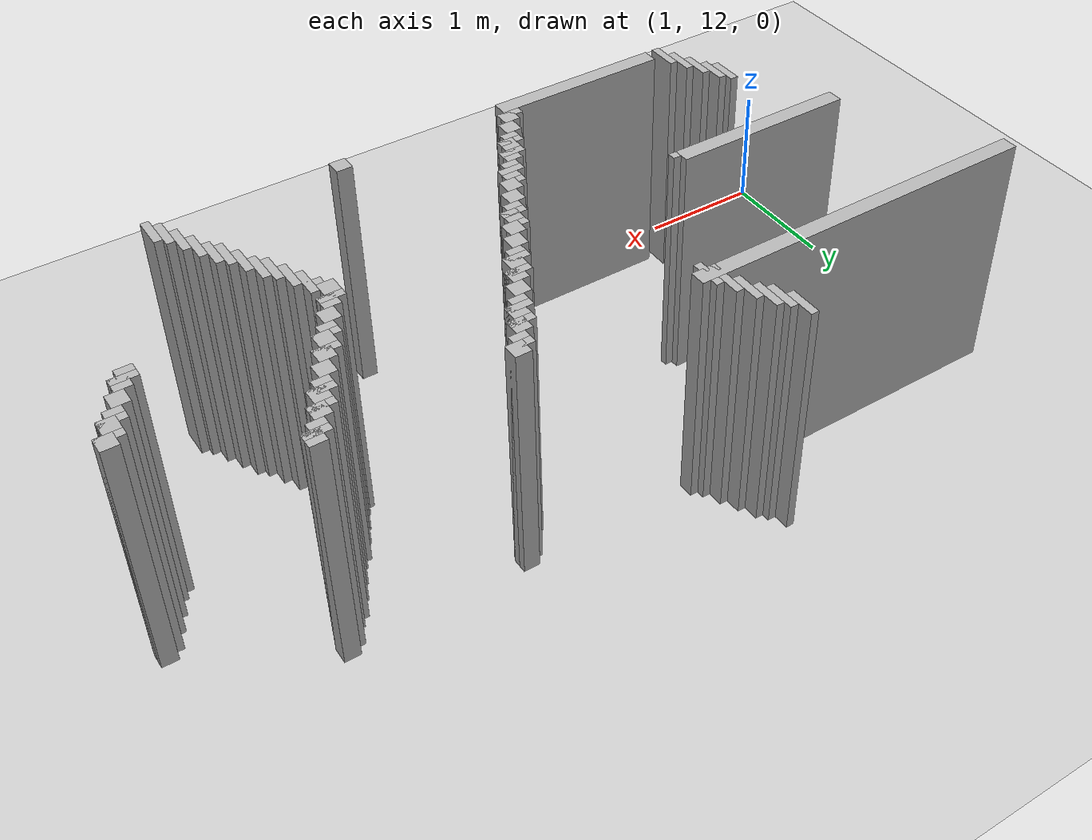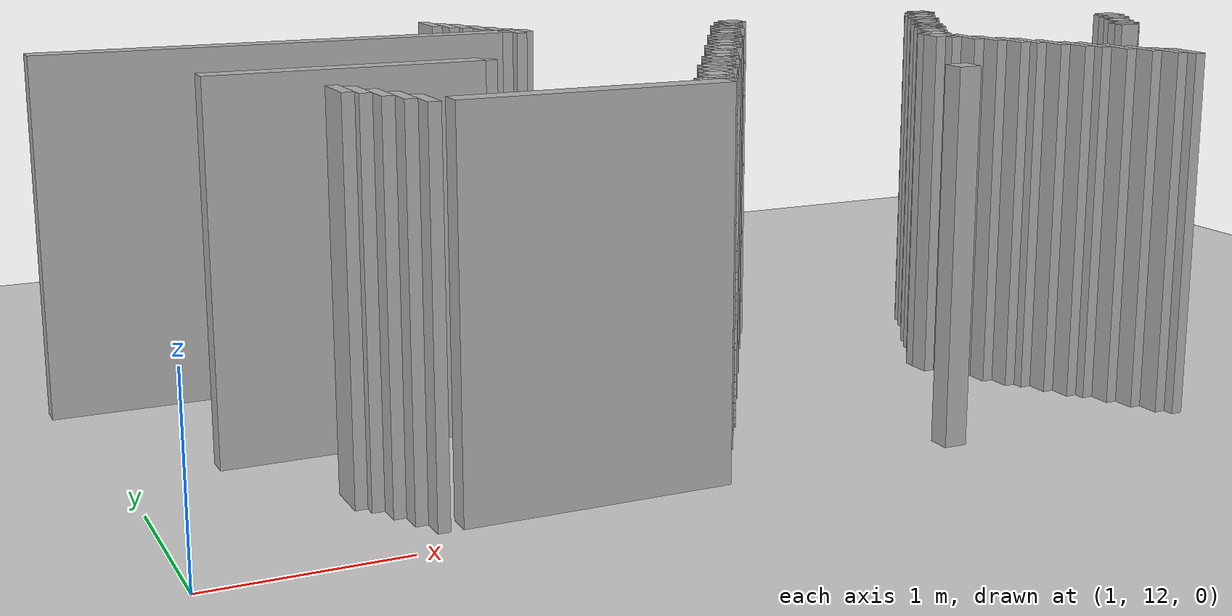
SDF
<sdf version="1.6">
 <world name="slam_world">
  <model name="ground_plane">
   <static>true</static>
   <link name="link">
    <collision name="collision">
     <geometry><plane><normal>0 0 1</normal><size>100 100</size></plane></geometry>
    </collision>
    <visual name="visual">
     <geometry><plane><normal>0 0 1</normal><size>100 100</size></plane></geometry>
     <material>
      <ambient>0.8 0.8 0.8 1</ambient>
      <diffuse>0.8 0.8 0.8 1</diffuse>
      <specular>0.8 0.8 0.8 1</specular>
     </material>
    </visual>
   </link>
  </model>
  <model name="wall_856">
   <static>true</static>
   <pose>3.2872340425531914 15.319148936170212 1.0 0 0 0</pose>
   <link name="link">
    <collision name="collision">
     <geometry><box><size>0.06382978723404255 0.2553191489361702 2.0</size></box></geometry>
    </collision>
    <visual name="visual">
     <geometry><box><size>0.06382978723404255 0.2553191489361702 2.0</size></box></geometry>
     <material><ambient>0.5 0.5 0.5 1</ambient><diffuse>0.7 0.7 0.7 1</diffuse></material>
    </visual>
   </link>
  </model>
  <model name="wall_862">
   <static>true</static>
   <pose>3.351063829787234 15.191489361702127 1.0 0 0 0</pose>
   <link name="link">
    <collision name="collision">
     <geometry><box><size>0.06382978723404255 0.2553191489361702 2.0</size></box></geometry>
    </collision>
    <visual name="visual">
     <geometry><box><size>0.06382978723404255 0.2553191489361702 2.0</size></box></geometry>
     <material><ambient>0.5 0.5 0.5 1</ambient><diffuse>0.7 0.7 0.7 1</diffuse></material>
    </visual>
   </link>
  </model>
  <model name="wall_868">
   <static>true</static>
   <pose>3.4148936170212765 15.127659574468083 1.0 0 0 0</pose>
   <link name="link">
    <collision name="collision">
     <geometry><box><size>0.06382978723404255 0.2553191489361702 2.0</size></box></geometry>
    </collision>
    <visual name="visual">
     <geometry><box><size>0.06382978723404255 0.2553191489361702 2.0</size></box></geometry>
     <material><ambient>0.5 0.5 0.5 1</ambient><diffuse>0.7 0.7 0.7 1</diffuse></material>
    </visual>
   </link>
  </model>
  <model name="wall_875">
   <static>true</static>
   <pose>3.478723404255319 14.999999999999998 1.0 0 0 0</pose>
   <link name="link">
    <collision name="collision">
     <geometry><box><size>0.06382978723404255 0.2553191489361702 2.0</size></box></geometry>
    </collision>
    <visual name="visual">
     <geometry><box><size>0.06382978723404255 0.2553191489361702 2.0</size></box></geometry>
     <material><ambient>0.5 0.5 0.5 1</ambient><diffuse>0.7 0.7 0.7 1</diffuse></material>
    </visual>
   </link>
  </model>
  <model name="wall_882">
   <static>true</static>
   <pose>3.5425531914893615 14.840425531914892 1.0 0 0 0</pose>
   <link name="link">
    <collision name="collision">
     <geometry><box><size>0.06382978723404255 0.3191489361702127 2.0</size></box></geometry>
    </collision>
    <visual name="visual">
     <geometry><box><size>0.06382978723404255 0.3191489361702127 2.0</size></box></geometry>
     <material><ambient>0.5 0.5 0.5 1</ambient><diffuse>0.7 0.7 0.7 1</diffuse></material>
    </visual>
   </link>
  </model>
  <model name="wall_888">
   <static>true</static>
   <pose>3.606382978723404 14.744680851063828 1.0 0 0 0</pose>
   <link name="link">
    <collision name="collision">
     <geometry><box><size>0.06382978723404255 0.2553191489361702 2.0</size></box></geometry>
    </collision>
    <visual name="visual">
     <geometry><box><size>0.06382978723404255 0.2553191489361702 2.0</size></box></geometry>
     <material><ambient>0.5 0.5 0.5 1</ambient><diffuse>0.7 0.7 0.7 1</diffuse></material>
    </visual>
   </link>
  </model>
  <model name="wall_893">
   <static>true</static>
   <pose>2.2659574468085104 14.744680851063828 1.0 0 0 0</pose>
   <link name="link">
    <collision name="collision">
     <geometry><box><size>2.8723404255319145 0.1276595744680851 2.0</size></box></geometry>
    </collision>
    <visual name="visual">
     <geometry><box><size>2.8723404255319145 0.1276595744680851 2.0</size></box></geometry>
     <material><ambient>0.5 0.5 0.5 1</ambient><diffuse>0.7 0.7 0.7 1</diffuse></material>
    </visual>
   </link>
  </model>
  <model name="wall_898">
   <static>true</static>
   <pose>5.042553191489361 14.680851063829786 1.0 0 0 0</pose>
   <link name="link">
    <collision name="collision">
     <geometry><box><size>0.1276595744680851 0.1276595744680851 2.0</size></box></geometry>
    </collision>
    <visual name="visual">
     <geometry><box><size>0.1276595744680851 0.1276595744680851 2.0</size></box></geometry>
     <material><ambient>0.5 0.5 0.5 1</ambient><diffuse>0.7 0.7 0.7 1</diffuse></material>
    </visual>
   </link>
  </model>
  <model name="wall_899">
   <static>true</static>
   <pose>6.446808510638298 14.680851063829786 1.0 0 0 0</pose>
   <link name="link">
    <collision name="collision">
     <geometry><box><size>0.1276595744680851 0.1276595744680851 2.0</size></box></geometry>
    </collision>
    <visual name="visual">
     <geometry><box><size>0.1276595744680851 0.1276595744680851 2.0</size></box></geometry>
     <material><ambient>0.5 0.5 0.5 1</ambient><diffuse>0.7 0.7 0.7 1</diffuse></material>
    </visual>
   </link>
  </model>
  <model name="wall_904">
   <static>true</static>
   <pose>5.01063829787234 14.648936170212766 1.0 0 0 0</pose>
   <link name="link">
    <collision name="collision">
     <geometry><box><size>0.19148936170212766 0.06382978723404255 2.0</size></box></geometry>
    </collision>
    <visual name="visual">
     <geometry><box><size>0.19148936170212766 0.06382978723404255 2.0</size></box></geometry>
     <material><ambient>0.5 0.5 0.5 1</ambient><diffuse>0.7 0.7 0.7 1</diffuse></material>
    </visual>
   </link>
  </model>
  <model name="wall_905">
   <static>true</static>
   <pose>6.414893617021276 14.648936170212766 1.0 0 0 0</pose>
   <link name="link">
    <collision name="collision">
     <geometry><box><size>0.19148936170212766 0.06382978723404255 2.0</size></box></geometry>
    </collision>
    <visual name="visual">
     <geometry><box><size>0.19148936170212766 0.06382978723404255 2.0</size></box></geometry>
     <material><ambient>0.5 0.5 0.5 1</ambient><diffuse>0.7 0.7 0.7 1</diffuse></material>
    </visual>
   </link>
  </model>
  <model name="wall_911">
   <static>true</static>
   <pose>4.978723404255319 14.585106382978722 1.0 0 0 0</pose>
   <link name="link">
    <collision name="collision">
     <geometry><box><size>0.1276595744680851 0.06382978723404255 2.0</size></box></geometry>
    </collision>
    <visual name="visual">
     <geometry><box><size>0.1276595744680851 0.06382978723404255 2.0</size></box></geometry>
     <material><ambient>0.5 0.5 0.5 1</ambient><diffuse>0.7 0.7 0.7 1</diffuse></material>
    </visual>
   </link>
  </model>
  <model name="wall_912">
   <static>true</static>
   <pose>6.382978723404255 14.585106382978722 1.0 0 0 0</pose>
   <link name="link">
    <collision name="collision">
     <geometry><box><size>0.1276595744680851 0.06382978723404255 2.0</size></box></geometry>
    </collision>
    <visual name="visual">
     <geometry><box><size>0.1276595744680851 0.06382978723404255 2.0</size></box></geometry>
     <material><ambient>0.5 0.5 0.5 1</ambient><diffuse>0.7 0.7 0.7 1</diffuse></material>
    </visual>
   </link>
  </model>
  <model name="wall_917">
   <static>true</static>
   <pose>4.914893617021276 14.489361702127658 1.0 0 0 0</pose>
   <link name="link">
    <collision name="collision">
     <geometry><box><size>0.1276595744680851 0.1276595744680851 2.0</size></box></geometry>
    </collision>
    <visual name="visual">
     <geometry><box><size>0.1276595744680851 0.1276595744680851 2.0</size></box></geometry>
     <material><ambient>0.5 0.5 0.5 1</ambient><diffuse>0.7 0.7 0.7 1</diffuse></material>
    </visual>
   </link>
  </model>
  <model name="wall_918">
   <static>true</static>
   <pose>6.319148936170213 14.489361702127658 1.0 0 0 0</pose>
   <link name="link">
    <collision name="collision">
     <geometry><box><size>0.1276595744680851 0.1276595744680851 2.0</size></box></geometry>
    </collision>
    <visual name="visual">
     <geometry><box><size>0.1276595744680851 0.1276595744680851 2.0</size></box></geometry>
     <material><ambient>0.5 0.5 0.5 1</ambient><diffuse>0.7 0.7 0.7 1</diffuse></material>
    </visual>
   </link>
  </model>
  <model name="wall_925">
   <static>true</static>
   <pose>4.882978723404255 14.457446808510637 1.0 0 0 0</pose>
   <link name="link">
    <collision name="collision">
     <geometry><box><size>0.19148936170212766 0.06382978723404255 2.0</size></box></geometry>
    </collision>
    <visual name="visual">
     <geometry><box><size>0.19148936170212766 0.06382978723404255 2.0</size></box></geometry>
     <material><ambient>0.5 0.5 0.5 1</ambient><diffuse>0.7 0.7 0.7 1</diffuse></material>
    </visual>
   </link>
  </model>
  <model name="wall_926">
   <static>true</static>
   <pose>6.287234042553191 14.457446808510637 1.0 0 0 0</pose>
   <link name="link">
    <collision name="collision">
     <geometry><box><size>0.19148936170212766 0.06382978723404255 2.0</size></box></geometry>
    </collision>
    <visual name="visual">
     <geometry><box><size>0.19148936170212766 0.06382978723404255 2.0</size></box></geometry>
     <material><ambient>0.5 0.5 0.5 1</ambient><diffuse>0.7 0.7 0.7 1</diffuse></material>
    </visual>
   </link>
  </model>
  <model name="wall_933">
   <static>true</static>
   <pose>4.8510638297872335 14.361702127659573 1.0 0 0 0</pose>
   <link name="link">
    <collision name="collision">
     <geometry><box><size>0.1276595744680851 0.1276595744680851 2.0</size></box></geometry>
    </collision>
    <visual name="visual">
     <geometry><box><size>0.1276595744680851 0.1276595744680851 2.0</size></box></geometry>
     <material><ambient>0.5 0.5 0.5 1</ambient><diffuse>0.7 0.7 0.7 1</diffuse></material>
    </visual>
   </link>
  </model>
  <model name="wall_934">
   <static>true</static>
   <pose>6.25531914893617 14.361702127659573 1.0 0 0 0</pose>
   <link name="link">
    <collision name="collision">
     <geometry><box><size>0.1276595744680851 0.1276595744680851 2.0</size></box></geometry>
    </collision>
    <visual name="visual">
     <geometry><box><size>0.1276595744680851 0.1276595744680851 2.0</size></box></geometry>
     <material><ambient>0.5 0.5 0.5 1</ambient><diffuse>0.7 0.7 0.7 1</diffuse></material>
    </visual>
   </link>
  </model>
  <model name="wall_941">
   <static>true</static>
   <pose>4.819148936170213 14.329787234042552 1.0 0 0 0</pose>
   <link name="link">
    <collision name="collision">
     <geometry><box><size>0.19148936170212766 0.06382978723404255 2.0</size></box></geometry>
    </collision>
    <visual name="visual">
     <geometry><box><size>0.19148936170212766 0.06382978723404255 2.0</size></box></geometry>
     <material><ambient>0.5 0.5 0.5 1</ambient><diffuse>0.7 0.7 0.7 1</diffuse></material>
    </visual>
   </link>
  </model>
  <model name="wall_942">
   <static>true</static>
   <pose>6.223404255319148 14.329787234042552 1.0 0 0 0</pose>
   <link name="link">
    <collision name="collision">
     <geometry><box><size>0.19148936170212766 0.06382978723404255 2.0</size></box></geometry>
    </collision>
    <visual name="visual">
     <geometry><box><size>0.19148936170212766 0.06382978723404255 2.0</size></box></geometry>
     <material><ambient>0.5 0.5 0.5 1</ambient><diffuse>0.7 0.7 0.7 1</diffuse></material>
    </visual>
   </link>
  </model>
  <model name="wall_949">
   <static>true</static>
   <pose>4.787234042553191 14.265957446808509 1.0 0 0 0</pose>
   <link name="link">
    <collision name="collision">
     <geometry><box><size>0.1276595744680851 0.06382978723404255 2.0</size></box></geometry>
    </collision>
    <visual name="visual">
     <geometry><box><size>0.1276595744680851 0.06382978723404255 2.0</size></box></geometry>
     <material><ambient>0.5 0.5 0.5 1</ambient><diffuse>0.7 0.7 0.7 1</diffuse></material>
    </visual>
   </link>
  </model>
  <model name="wall_950">
   <static>true</static>
   <pose>6.191489361702128 14.265957446808509 1.0 0 0 0</pose>
   <link name="link">
    <collision name="collision">
     <geometry><box><size>0.1276595744680851 0.06382978723404255 2.0</size></box></geometry>
    </collision>
    <visual name="visual">
     <geometry><box><size>0.1276595744680851 0.06382978723404255 2.0</size></box></geometry>
     <material><ambient>0.5 0.5 0.5 1</ambient><diffuse>0.7 0.7 0.7 1</diffuse></material>
    </visual>
   </link>
  </model>
  <model name="wall_956">
   <static>true</static>
   <pose>4.723404255319148 14.170212765957446 1.0 0 0 0</pose>
   <link name="link">
    <collision name="collision">
     <geometry><box><size>0.1276595744680851 0.1276595744680851 2.0</size></box></geometry>
    </collision>
    <visual name="visual">
     <geometry><box><size>0.1276595744680851 0.1276595744680851 2.0</size></box></geometry>
     <material><ambient>0.5 0.5 0.5 1</ambient><diffuse>0.7 0.7 0.7 1</diffuse></material>
    </visual>
   </link>
  </model>
  <model name="wall_957">
   <static>true</static>
   <pose>6.127659574468085 14.170212765957446 1.0 0 0 0</pose>
   <link name="link">
    <collision name="collision">
     <geometry><box><size>0.1276595744680851 0.1276595744680851 2.0</size></box></geometry>
    </collision>
    <visual name="visual">
     <geometry><box><size>0.1276595744680851 0.1276595744680851 2.0</size></box></geometry>
     <material><ambient>0.5 0.5 0.5 1</ambient><diffuse>0.7 0.7 0.7 1</diffuse></material>
    </visual>
   </link>
  </model>
  <model name="wall_964">
   <static>true</static>
   <pose>4.659574468085106 14.042553191489361 1.0 0 0 0</pose>
   <link name="link">
    <collision name="collision">
     <geometry><box><size>0.1276595744680851 0.1276595744680851 2.0</size></box></geometry>
    </collision>
    <visual name="visual">
     <geometry><box><size>0.1276595744680851 0.1276595744680851 2.0</size></box></geometry>
     <material><ambient>0.5 0.5 0.5 1</ambient><diffuse>0.7 0.7 0.7 1</diffuse></material>
    </visual>
   </link>
  </model>
  <model name="wall_965">
   <static>true</static>
   <pose>6.063829787234042 14.042553191489361 1.0 0 0 0</pose>
   <link name="link">
    <collision name="collision">
     <geometry><box><size>0.1276595744680851 0.1276595744680851 2.0</size></box></geometry>
    </collision>
    <visual name="visual">
     <geometry><box><size>0.1276595744680851 0.1276595744680851 2.0</size></box></geometry>
     <material><ambient>0.5 0.5 0.5 1</ambient><diffuse>0.7 0.7 0.7 1</diffuse></material>
    </visual>
   </link>
  </model>
  <model name="wall_966">
   <static>true</static>
   <pose>7.468085106382978 14.042553191489361 1.0 0 0 0</pose>
   <link name="link">
    <collision name="collision">
     <geometry><box><size>0.1276595744680851 0.1276595744680851 2.0</size></box></geometry>
    </collision>
    <visual name="visual">
     <geometry><box><size>0.1276595744680851 0.1276595744680851 2.0</size></box></geometry>
     <material><ambient>0.5 0.5 0.5 1</ambient><diffuse>0.7 0.7 0.7 1</diffuse></material>
    </visual>
   </link>
  </model>
  <model name="wall_972">
   <static>true</static>
   <pose>4.627659574468085 14.010638297872338 1.0 0 0 0</pose>
   <link name="link">
    <collision name="collision">
     <geometry><box><size>0.19148936170212766 0.06382978723404255 2.0</size></box></geometry>
    </collision>
    <visual name="visual">
     <geometry><box><size>0.19148936170212766 0.06382978723404255 2.0</size></box></geometry>
     <material><ambient>0.5 0.5 0.5 1</ambient><diffuse>0.7 0.7 0.7 1</diffuse></material>
    </visual>
   </link>
  </model>
  <model name="wall_973">
   <static>true</static>
   <pose>6.031914893617021 14.010638297872338 1.0 0 0 0</pose>
   <link name="link">
    <collision name="collision">
     <geometry><box><size>0.19148936170212766 0.06382978723404255 2.0</size></box></geometry>
    </collision>
    <visual name="visual">
     <geometry><box><size>0.19148936170212766 0.06382978723404255 2.0</size></box></geometry>
     <material><ambient>0.5 0.5 0.5 1</ambient><diffuse>0.7 0.7 0.7 1</diffuse></material>
    </visual>
   </link>
  </model>
  <model name="wall_974">
   <static>true</static>
   <pose>7.436170212765957 14.010638297872338 1.0 0 0 0</pose>
   <link name="link">
    <collision name="collision">
     <geometry><box><size>0.19148936170212766 0.06382978723404255 2.0</size></box></geometry>
    </collision>
    <visual name="visual">
     <geometry><box><size>0.19148936170212766 0.06382978723404255 2.0</size></box></geometry>
     <material><ambient>0.5 0.5 0.5 1</ambient><diffuse>0.7 0.7 0.7 1</diffuse></material>
    </visual>
   </link>
  </model>
  <model name="wall_980">
   <static>true</static>
   <pose>4.595744680851063 13.914893617021276 1.0 0 0 0</pose>
   <link name="link">
    <collision name="collision">
     <geometry><box><size>0.1276595744680851 0.1276595744680851 2.0</size></box></geometry>
    </collision>
    <visual name="visual">
     <geometry><box><size>0.1276595744680851 0.1276595744680851 2.0</size></box></geometry>
     <material><ambient>0.5 0.5 0.5 1</ambient><diffuse>0.7 0.7 0.7 1</diffuse></material>
    </visual>
   </link>
  </model>
  <model name="wall_981">
   <static>true</static>
   <pose>5.999999999999999 13.914893617021276 1.0 0 0 0</pose>
   <link name="link">
    <collision name="collision">
     <geometry><box><size>0.1276595744680851 0.1276595744680851 2.0</size></box></geometry>
    </collision>
    <visual name="visual">
     <geometry><box><size>0.1276595744680851 0.1276595744680851 2.0</size></box></geometry>
     <material><ambient>0.5 0.5 0.5 1</ambient><diffuse>0.7 0.7 0.7 1</diffuse></material>
    </visual>
   </link>
  </model>
  <model name="wall_982">
   <static>true</static>
   <pose>7.404255319148936 13.914893617021276 1.0 0 0 0</pose>
   <link name="link">
    <collision name="collision">
     <geometry><box><size>0.1276595744680851 0.1276595744680851 2.0</size></box></geometry>
    </collision>
    <visual name="visual">
     <geometry><box><size>0.1276595744680851 0.1276595744680851 2.0</size></box></geometry>
     <material><ambient>0.5 0.5 0.5 1</ambient><diffuse>0.7 0.7 0.7 1</diffuse></material>
    </visual>
   </link>
  </model>
  <model name="wall_987">
   <static>true</static>
   <pose>4.5638297872340425 13.882978723404253 1.0 0 0 0</pose>
   <link name="link">
    <collision name="collision">
     <geometry><box><size>0.19148936170212766 0.06382978723404255 2.0</size></box></geometry>
    </collision>
    <visual name="visual">
     <geometry><box><size>0.19148936170212766 0.06382978723404255 2.0</size></box></geometry>
     <material><ambient>0.5 0.5 0.5 1</ambient><diffuse>0.7 0.7 0.7 1</diffuse></material>
    </visual>
   </link>
  </model>
  <model name="wall_988">
   <static>true</static>
   <pose>5.968085106382978 13.882978723404253 1.0 0 0 0</pose>
   <link name="link">
    <collision name="collision">
     <geometry><box><size>0.19148936170212766 0.06382978723404255 2.0</size></box></geometry>
    </collision>
    <visual name="visual">
     <geometry><box><size>0.19148936170212766 0.06382978723404255 2.0</size></box></geometry>
     <material><ambient>0.5 0.5 0.5 1</ambient><diffuse>0.7 0.7 0.7 1</diffuse></material>
    </visual>
   </link>
  </model>
  <model name="wall_989">
   <static>true</static>
   <pose>7.372340425531914 13.882978723404253 1.0 0 0 0</pose>
   <link name="link">
    <collision name="collision">
     <geometry><box><size>0.19148936170212766 0.06382978723404255 2.0</size></box></geometry>
    </collision>
    <visual name="visual">
     <geometry><box><size>0.19148936170212766 0.06382978723404255 2.0</size></box></geometry>
     <material><ambient>0.5 0.5 0.5 1</ambient><diffuse>0.7 0.7 0.7 1</diffuse></material>
    </visual>
   </link>
  </model>
  <model name="wall_995">
   <static>true</static>
   <pose>4.531914893617021 13.819148936170212 1.0 0 0 0</pose>
   <link name="link">
    <collision name="collision">
     <geometry><box><size>0.1276595744680851 0.06382978723404255 2.0</size></box></geometry>
    </collision>
    <visual name="visual">
     <geometry><box><size>0.1276595744680851 0.06382978723404255 2.0</size></box></geometry>
     <material><ambient>0.5 0.5 0.5 1</ambient><diffuse>0.7 0.7 0.7 1</diffuse></material>
    </visual>
   </link>
  </model>
  <model name="wall_996">
   <static>true</static>
   <pose>5.936170212765957 13.819148936170212 1.0 0 0 0</pose>
   <link name="link">
    <collision name="collision">
     <geometry><box><size>0.1276595744680851 0.06382978723404255 2.0</size></box></geometry>
    </collision>
    <visual name="visual">
     <geometry><box><size>0.1276595744680851 0.06382978723404255 2.0</size></box></geometry>
     <material><ambient>0.5 0.5 0.5 1</ambient><diffuse>0.7 0.7 0.7 1</diffuse></material>
    </visual>
   </link>
  </model>
  <model name="wall_997">
   <static>true</static>
   <pose>7.340425531914893 13.819148936170212 1.0 0 0 0</pose>
   <link name="link">
    <collision name="collision">
     <geometry><box><size>0.1276595744680851 0.06382978723404255 2.0</size></box></geometry>
    </collision>
    <visual name="visual">
     <geometry><box><size>0.1276595744680851 0.06382978723404255 2.0</size></box></geometry>
     <material><ambient>0.5 0.5 0.5 1</ambient><diffuse>0.7 0.7 0.7 1</diffuse></material>
    </visual>
   </link>
  </model>
  <model name="wall_1002">
   <static>true</static>
   <pose>4.468085106382978 13.723404255319148 1.0 0 0 0</pose>
   <link name="link">
    <collision name="collision">
     <geometry><box><size>0.1276595744680851 0.1276595744680851 2.0</size></box></geometry>
    </collision>
    <visual name="visual">
     <geometry><box><size>0.1276595744680851 0.1276595744680851 2.0</size></box></geometry>
     <material><ambient>0.5 0.5 0.5 1</ambient><diffuse>0.7 0.7 0.7 1</diffuse></material>
    </visual>
   </link>
  </model>
  <model name="wall_1003">
   <static>true</static>
   <pose>5.872340425531914 13.723404255319148 1.0 0 0 0</pose>
   <link name="link">
    <collision name="collision">
     <geometry><box><size>0.1276595744680851 0.1276595744680851 2.0</size></box></geometry>
    </collision>
    <visual name="visual">
     <geometry><box><size>0.1276595744680851 0.1276595744680851 2.0</size></box></geometry>
     <material><ambient>0.5 0.5 0.5 1</ambient><diffuse>0.7 0.7 0.7 1</diffuse></material>
    </visual>
   </link>
  </model>
  <model name="wall_1004">
   <static>true</static>
   <pose>7.276595744680851 13.723404255319148 1.0 0 0 0</pose>
   <link name="link">
    <collision name="collision">
     <geometry><box><size>0.1276595744680851 0.1276595744680851 2.0</size></box></geometry>
    </collision>
    <visual name="visual">
     <geometry><box><size>0.1276595744680851 0.1276595744680851 2.0</size></box></geometry>
     <material><ambient>0.5 0.5 0.5 1</ambient><diffuse>0.7 0.7 0.7 1</diffuse></material>
    </visual>
   </link>
  </model>
  <model name="wall_1010">
   <static>true</static>
   <pose>4.404255319148936 13.595744680851062 1.0 0 0 0</pose>
   <link name="link">
    <collision name="collision">
     <geometry><box><size>0.1276595744680851 0.1276595744680851 2.0</size></box></geometry>
    </collision>
    <visual name="visual">
     <geometry><box><size>0.1276595744680851 0.1276595744680851 2.0</size></box></geometry>
     <material><ambient>0.5 0.5 0.5 1</ambient><diffuse>0.7 0.7 0.7 1</diffuse></material>
    </visual>
   </link>
  </model>
  <model name="wall_1011">
   <static>true</static>
   <pose>5.8085106382978715 13.595744680851062 1.0 0 0 0</pose>
   <link name="link">
    <collision name="collision">
     <geometry><box><size>0.1276595744680851 0.1276595744680851 2.0</size></box></geometry>
    </collision>
    <visual name="visual">
     <geometry><box><size>0.1276595744680851 0.1276595744680851 2.0</size></box></geometry>
     <material><ambient>0.5 0.5 0.5 1</ambient><diffuse>0.7 0.7 0.7 1</diffuse></material>
    </visual>
   </link>
  </model>
  <model name="wall_1012">
   <static>true</static>
   <pose>7.212765957446808 13.595744680851062 1.0 0 0 0</pose>
   <link name="link">
    <collision name="collision">
     <geometry><box><size>0.1276595744680851 0.1276595744680851 2.0</size></box></geometry>
    </collision>
    <visual name="visual">
     <geometry><box><size>0.1276595744680851 0.1276595744680851 2.0</size></box></geometry>
     <material><ambient>0.5 0.5 0.5 1</ambient><diffuse>0.7 0.7 0.7 1</diffuse></material>
    </visual>
   </link>
  </model>
  <model name="wall_1018">
   <static>true</static>
   <pose>2.202127659574468 13.53191489361702 1.0 0 0 0</pose>
   <link name="link">
    <collision name="collision">
     <geometry><box><size>1.4680851063829785 0.1276595744680851 2.0</size></box></geometry>
    </collision>
    <visual name="visual">
     <geometry><box><size>1.4680851063829785 0.1276595744680851 2.0</size></box></geometry>
     <material><ambient>0.5 0.5 0.5 1</ambient><diffuse>0.7 0.7 0.7 1</diffuse></material>
    </visual>
   </link>
  </model>
  <model name="wall_1019">
   <static>true</static>
   <pose>4.372340425531915 13.563829787234042 1.0 0 0 0</pose>
   <link name="link">
    <collision name="collision">
     <geometry><box><size>0.19148936170212766 0.06382978723404255 2.0</size></box></geometry>
    </collision>
    <visual name="visual">
     <geometry><box><size>0.19148936170212766 0.06382978723404255 2.0</size></box></geometry>
     <material><ambient>0.5 0.5 0.5 1</ambient><diffuse>0.7 0.7 0.7 1</diffuse></material>
    </visual>
   </link>
  </model>
  <model name="wall_1020">
   <static>true</static>
   <pose>5.776595744680851 13.563829787234042 1.0 0 0 0</pose>
   <link name="link">
    <collision name="collision">
     <geometry><box><size>0.19148936170212766 0.06382978723404255 2.0</size></box></geometry>
    </collision>
    <visual name="visual">
     <geometry><box><size>0.19148936170212766 0.06382978723404255 2.0</size></box></geometry>
     <material><ambient>0.5 0.5 0.5 1</ambient><diffuse>0.7 0.7 0.7 1</diffuse></material>
    </visual>
   </link>
  </model>
  <model name="wall_1021">
   <static>true</static>
   <pose>7.180851063829786 13.563829787234042 1.0 0 0 0</pose>
   <link name="link">
    <collision name="collision">
     <geometry><box><size>0.19148936170212766 0.06382978723404255 2.0</size></box></geometry>
    </collision>
    <visual name="visual">
     <geometry><box><size>0.19148936170212766 0.06382978723404255 2.0</size></box></geometry>
     <material><ambient>0.5 0.5 0.5 1</ambient><diffuse>0.7 0.7 0.7 1</diffuse></material>
    </visual>
   </link>
  </model>
  <model name="wall_1027">
   <static>true</static>
   <pose>2.9680851063829783 13.499999999999998 1.0 0 0 0</pose>
   <link name="link">
    <collision name="collision">
     <geometry><box><size>0.06382978723404255 0.06382978723404255 2.0</size></box></geometry>
    </collision>
    <visual name="visual">
     <geometry><box><size>0.06382978723404255 0.06382978723404255 2.0</size></box></geometry>
     <material><ambient>0.5 0.5 0.5 1</ambient><diffuse>0.7 0.7 0.7 1</diffuse></material>
    </visual>
   </link>
  </model>
  <model name="wall_1028">
   <static>true</static>
   <pose>4.340425531914893 13.468085106382977 1.0 0 0 0</pose>
   <link name="link">
    <collision name="collision">
     <geometry><box><size>0.1276595744680851 0.1276595744680851 2.0</size></box></geometry>
    </collision>
    <visual name="visual">
     <geometry><box><size>0.1276595744680851 0.1276595744680851 2.0</size></box></geometry>
     <material><ambient>0.5 0.5 0.5 1</ambient><diffuse>0.7 0.7 0.7 1</diffuse></material>
    </visual>
   </link>
  </model>
  <model name="wall_1029">
   <static>true</static>
   <pose>5.744680851063829 13.468085106382977 1.0 0 0 0</pose>
   <link name="link">
    <collision name="collision">
     <geometry><box><size>0.1276595744680851 0.1276595744680851 2.0</size></box></geometry>
    </collision>
    <visual name="visual">
     <geometry><box><size>0.1276595744680851 0.1276595744680851 2.0</size></box></geometry>
     <material><ambient>0.5 0.5 0.5 1</ambient><diffuse>0.7 0.7 0.7 1</diffuse></material>
    </visual>
   </link>
  </model>
  <model name="wall_1030">
   <static>true</static>
   <pose>7.148936170212766 13.499999999999998 1.0 0 0 0</pose>
   <link name="link">
    <collision name="collision">
     <geometry><box><size>0.1276595744680851 0.06382978723404255 2.0</size></box></geometry>
    </collision>
    <visual name="visual">
     <geometry><box><size>0.1276595744680851 0.06382978723404255 2.0</size></box></geometry>
     <material><ambient>0.5 0.5 0.5 1</ambient><diffuse>0.7 0.7 0.7 1</diffuse></material>
    </visual>
   </link>
  </model>
  <model name="wall_1036">
   <static>true</static>
   <pose>4.308510638297872 13.436170212765957 1.0 0 0 0</pose>
   <link name="link">
    <collision name="collision">
     <geometry><box><size>0.19148936170212766 0.06382978723404255 2.0</size></box></geometry>
    </collision>
    <visual name="visual">
     <geometry><box><size>0.19148936170212766 0.06382978723404255 2.0</size></box></geometry>
     <material><ambient>0.5 0.5 0.5 1</ambient><diffuse>0.7 0.7 0.7 1</diffuse></material>
    </visual>
   </link>
  </model>
  <model name="wall_1037">
   <static>true</static>
   <pose>5.840425531914893 13.340425531914892 1.0 0 0 0</pose>
   <link name="link">
    <collision name="collision">
     <geometry><box><size>0.06382978723404255 0.2553191489361702 2.0</size></box></geometry>
    </collision>
    <visual name="visual">
     <geometry><box><size>0.06382978723404255 0.2553191489361702 2.0</size></box></geometry>
     <material><ambient>0.5 0.5 0.5 1</ambient><diffuse>0.7 0.7 0.7 1</diffuse></material>
    </visual>
   </link>
  </model>
  <model name="wall_1045">
   <static>true</static>
   <pose>4.276595744680851 13.372340425531913 1.0 0 0 0</pose>
   <link name="link">
    <collision name="collision">
     <geometry><box><size>0.1276595744680851 0.06382978723404255 2.0</size></box></geometry>
    </collision>
    <visual name="visual">
     <geometry><box><size>0.1276595744680851 0.06382978723404255 2.0</size></box></geometry>
     <material><ambient>0.5 0.5 0.5 1</ambient><diffuse>0.7 0.7 0.7 1</diffuse></material>
    </visual>
   </link>
  </model>
  <model name="wall_1046">
   <static>true</static>
   <pose>5.8085106382978715 13.372340425531913 1.0 0 0 0</pose>
   <link name="link">
    <collision name="collision">
     <geometry><box><size>0.1276595744680851 0.06382978723404255 2.0</size></box></geometry>
    </collision>
    <visual name="visual">
     <geometry><box><size>0.1276595744680851 0.06382978723404255 2.0</size></box></geometry>
     <material><ambient>0.5 0.5 0.5 1</ambient><diffuse>0.7 0.7 0.7 1</diffuse></material>
    </visual>
   </link>
  </model>
  <model name="wall_1051">
   <static>true</static>
   <pose>4.212765957446808 13.27659574468085 1.0 0 0 0</pose>
   <link name="link">
    <collision name="collision">
     <geometry><box><size>0.1276595744680851 0.1276595744680851 2.0</size></box></geometry>
    </collision>
    <visual name="visual">
     <geometry><box><size>0.1276595744680851 0.1276595744680851 2.0</size></box></geometry>
     <material><ambient>0.5 0.5 0.5 1</ambient><diffuse>0.7 0.7 0.7 1</diffuse></material>
    </visual>
   </link>
  </model>
  <model name="wall_1052">
   <static>true</static>
   <pose>5.904255319148936 13.212765957446807 1.0 0 0 0</pose>
   <link name="link">
    <collision name="collision">
     <geometry><box><size>0.06382978723404255 0.2553191489361702 2.0</size></box></geometry>
    </collision>
    <visual name="visual">
     <geometry><box><size>0.06382978723404255 0.2553191489361702 2.0</size></box></geometry>
     <material><ambient>0.5 0.5 0.5 1</ambient><diffuse>0.7 0.7 0.7 1</diffuse></material>
    </visual>
   </link>
  </model>
  <model name="wall_1061">
   <static>true</static>
   <pose>4.148936170212766 13.148936170212766 1.0 0 0 0</pose>
   <link name="link">
    <collision name="collision">
     <geometry><box><size>0.1276595744680851 0.1276595744680851 2.0</size></box></geometry>
    </collision>
    <visual name="visual">
     <geometry><box><size>0.1276595744680851 0.1276595744680851 2.0</size></box></geometry>
     <material><ambient>0.5 0.5 0.5 1</ambient><diffuse>0.7 0.7 0.7 1</diffuse></material>
    </visual>
   </link>
  </model>
  <model name="wall_1062">
   <static>true</static>
   <pose>5.968085106382978 13.085106382978722 1.0 0 0 0</pose>
   <link name="link">
    <collision name="collision">
     <geometry><box><size>0.06382978723404255 0.2553191489361702 2.0</size></box></geometry>
    </collision>
    <visual name="visual">
     <geometry><box><size>0.06382978723404255 0.2553191489361702 2.0</size></box></geometry>
     <material><ambient>0.5 0.5 0.5 1</ambient><diffuse>0.7 0.7 0.7 1</diffuse></material>
    </visual>
   </link>
  </model>
  <model name="wall_1071">
   <static>true</static>
   <pose>4.117021276595745 13.117021276595743 1.0 0 0 0</pose>
   <link name="link">
    <collision name="collision">
     <geometry><box><size>0.19148936170212766 0.06382978723404255 2.0</size></box></geometry>
    </collision>
    <visual name="visual">
     <geometry><box><size>0.19148936170212766 0.06382978723404255 2.0</size></box></geometry>
     <material><ambient>0.5 0.5 0.5 1</ambient><diffuse>0.7 0.7 0.7 1</diffuse></material>
    </visual>
   </link>
  </model>
  <model name="wall_1072">
   <static>true</static>
   <pose>6.031914893617021 13.02127659574468 1.0 0 0 0</pose>
   <link name="link">
    <collision name="collision">
     <geometry><box><size>0.06382978723404255 0.2553191489361702 2.0</size></box></geometry>
    </collision>
    <visual name="visual">
     <geometry><box><size>0.06382978723404255 0.2553191489361702 2.0</size></box></geometry>
     <material><ambient>0.5 0.5 0.5 1</ambient><diffuse>0.7 0.7 0.7 1</diffuse></material>
    </visual>
   </link>
  </model>
  <model name="wall_1080">
   <static>true</static>
   <pose>4.085106382978723 13.02127659574468 1.0 0 0 0</pose>
   <link name="link">
    <collision name="collision">
     <geometry><box><size>0.1276595744680851 0.1276595744680851 2.0</size></box></geometry>
    </collision>
    <visual name="visual">
     <geometry><box><size>0.1276595744680851 0.1276595744680851 2.0</size></box></geometry>
     <material><ambient>0.5 0.5 0.5 1</ambient><diffuse>0.7 0.7 0.7 1</diffuse></material>
    </visual>
   </link>
  </model>
  <model name="wall_1088">
   <static>true</static>
   <pose>4.053191489361701 12.989361702127658 1.0 0 0 0</pose>
   <link name="link">
    <collision name="collision">
     <geometry><box><size>0.19148936170212766 0.06382978723404255 2.0</size></box></geometry>
    </collision>
    <visual name="visual">
     <geometry><box><size>0.19148936170212766 0.06382978723404255 2.0</size></box></geometry>
     <material><ambient>0.5 0.5 0.5 1</ambient><diffuse>0.7 0.7 0.7 1</diffuse></material>
    </visual>
   </link>
  </model>
  <model name="wall_1089">
   <static>true</static>
   <pose>6.095744680851063 12.893617021276595 1.0 0 0 0</pose>
   <link name="link">
    <collision name="collision">
     <geometry><box><size>0.06382978723404255 0.2553191489361702 2.0</size></box></geometry>
    </collision>
    <visual name="visual">
     <geometry><box><size>0.06382978723404255 0.2553191489361702 2.0</size></box></geometry>
     <material><ambient>0.5 0.5 0.5 1</ambient><diffuse>0.7 0.7 0.7 1</diffuse></material>
    </visual>
   </link>
  </model>
  <model name="wall_1096">
   <static>true</static>
   <pose>4.0212765957446805 12.925531914893616 1.0 0 0 0</pose>
   <link name="link">
    <collision name="collision">
     <geometry><box><size>0.1276595744680851 0.06382978723404255 2.0</size></box></geometry>
    </collision>
    <visual name="visual">
     <geometry><box><size>0.1276595744680851 0.06382978723404255 2.0</size></box></geometry>
     <material><ambient>0.5 0.5 0.5 1</ambient><diffuse>0.7 0.7 0.7 1</diffuse></material>
    </visual>
   </link>
  </model>
  <model name="wall_1100">
   <static>true</static>
   <pose>1.9468085106382977 12.76595744680851 1.0 0 0 0</pose>
   <link name="link">
    <collision name="collision">
     <geometry><box><size>0.06382978723404255 0.2553191489361702 2.0</size></box></geometry>
    </collision>
    <visual name="visual">
     <geometry><box><size>0.06382978723404255 0.2553191489361702 2.0</size></box></geometry>
     <material><ambient>0.5 0.5 0.5 1</ambient><diffuse>0.7 0.7 0.7 1</diffuse></material>
    </visual>
   </link>
  </model>
  <model name="wall_1101">
   <static>true</static>
   <pose>3.957446808510638 12.829787234042552 1.0 0 0 0</pose>
   <link name="link">
    <collision name="collision">
     <geometry><box><size>0.1276595744680851 0.1276595744680851 2.0</size></box></geometry>
    </collision>
    <visual name="visual">
     <geometry><box><size>0.1276595744680851 0.1276595744680851 2.0</size></box></geometry>
     <material><ambient>0.5 0.5 0.5 1</ambient><diffuse>0.7 0.7 0.7 1</diffuse></material>
    </visual>
   </link>
  </model>
  <model name="wall_1102">
   <static>true</static>
   <pose>6.159574468085106 12.76595744680851 1.0 0 0 0</pose>
   <link name="link">
    <collision name="collision">
     <geometry><box><size>0.06382978723404255 0.2553191489361702 2.0</size></box></geometry>
    </collision>
    <visual name="visual">
     <geometry><box><size>0.06382978723404255 0.2553191489361702 2.0</size></box></geometry>
     <material><ambient>0.5 0.5 0.5 1</ambient><diffuse>0.7 0.7 0.7 1</diffuse></material>
    </visual>
   </link>
  </model>
  <model name="wall_1110">
   <static>true</static>
   <pose>2.0106382978723403 12.702127659574467 1.0 0 0 0</pose>
   <link name="link">
    <collision name="collision">
     <geometry><box><size>0.06382978723404255 0.2553191489361702 2.0</size></box></geometry>
    </collision>
    <visual name="visual">
     <geometry><box><size>0.06382978723404255 0.2553191489361702 2.0</size></box></geometry>
     <material><ambient>0.5 0.5 0.5 1</ambient><diffuse>0.7 0.7 0.7 1</diffuse></material>
    </visual>
   </link>
  </model>
  <model name="wall_1111">
   <static>true</static>
   <pose>3.9255319148936167 12.797872340425531 1.0 0 0 0</pose>
   <link name="link">
    <collision name="collision">
     <geometry><box><size>0.19148936170212766 0.06382978723404255 2.0</size></box></geometry>
    </collision>
    <visual name="visual">
     <geometry><box><size>0.19148936170212766 0.06382978723404255 2.0</size></box></geometry>
     <material><ambient>0.5 0.5 0.5 1</ambient><diffuse>0.7 0.7 0.7 1</diffuse></material>
    </visual>
   </link>
  </model>
  <model name="wall_1112">
   <static>true</static>
   <pose>6.223404255319148 12.702127659574467 1.0 0 0 0</pose>
   <link name="link">
    <collision name="collision">
     <geometry><box><size>0.06382978723404255 0.2553191489361702 2.0</size></box></geometry>
    </collision>
    <visual name="visual">
     <geometry><box><size>0.06382978723404255 0.2553191489361702 2.0</size></box></geometry>
     <material><ambient>0.5 0.5 0.5 1</ambient><diffuse>0.7 0.7 0.7 1</diffuse></material>
    </visual>
   </link>
  </model>
  <model name="wall_1119">
   <static>true</static>
   <pose>3.8936170212765955 12.702127659574467 1.0 0 0 0</pose>
   <link name="link">
    <collision name="collision">
     <geometry><box><size>0.1276595744680851 0.1276595744680851 2.0</size></box></geometry>
    </collision>
    <visual name="visual">
     <geometry><box><size>0.1276595744680851 0.1276595744680851 2.0</size></box></geometry>
     <material><ambient>0.5 0.5 0.5 1</ambient><diffuse>0.7 0.7 0.7 1</diffuse></material>
    </visual>
   </link>
  </model>
  <model name="wall_1123">
   <static>true</static>
   <pose>2.074468085106383 12.574468085106382 1.0 0 0 0</pose>
   <link name="link">
    <collision name="collision">
     <geometry><box><size>0.06382978723404255 0.2553191489361702 2.0</size></box></geometry>
    </collision>
    <visual name="visual">
     <geometry><box><size>0.06382978723404255 0.2553191489361702 2.0</size></box></geometry>
     <material><ambient>0.5 0.5 0.5 1</ambient><diffuse>0.7 0.7 0.7 1</diffuse></material>
    </visual>
   </link>
  </model>
  <model name="wall_1124">
   <static>true</static>
   <pose>3.861702127659574 12.670212765957446 1.0 0 0 0</pose>
   <link name="link">
    <collision name="collision">
     <geometry><box><size>0.19148936170212766 0.06382978723404255 2.0</size></box></geometry>
    </collision>
    <visual name="visual">
     <geometry><box><size>0.19148936170212766 0.06382978723404255 2.0</size></box></geometry>
     <material><ambient>0.5 0.5 0.5 1</ambient><diffuse>0.7 0.7 0.7 1</diffuse></material>
    </visual>
   </link>
  </model>
  <model name="wall_1125">
   <static>true</static>
   <pose>6.287234042553191 12.574468085106382 1.0 0 0 0</pose>
   <link name="link">
    <collision name="collision">
     <geometry><box><size>0.06382978723404255 0.2553191489361702 2.0</size></box></geometry>
    </collision>
    <visual name="visual">
     <geometry><box><size>0.06382978723404255 0.2553191489361702 2.0</size></box></geometry>
     <material><ambient>0.5 0.5 0.5 1</ambient><diffuse>0.7 0.7 0.7 1</diffuse></material>
    </visual>
   </link>
  </model>
  <model name="wall_1132">
   <static>true</static>
   <pose>3.829787234042553 12.606382978723403 1.0 0 0 0</pose>
   <link name="link">
    <collision name="collision">
     <geometry><box><size>0.1276595744680851 0.06382978723404255 2.0</size></box></geometry>
    </collision>
    <visual name="visual">
     <geometry><box><size>0.1276595744680851 0.06382978723404255 2.0</size></box></geometry>
     <material><ambient>0.5 0.5 0.5 1</ambient><diffuse>0.7 0.7 0.7 1</diffuse></material>
    </visual>
   </link>
  </model>
  <model name="wall_1136">
   <static>true</static>
   <pose>2.1382978723404253 12.446808510638297 1.0 0 0 0</pose>
   <link name="link">
    <collision name="collision">
     <geometry><box><size>0.06382978723404255 0.2553191489361702 2.0</size></box></geometry>
    </collision>
    <visual name="visual">
     <geometry><box><size>0.06382978723404255 0.2553191489361702 2.0</size></box></geometry>
     <material><ambient>0.5 0.5 0.5 1</ambient><diffuse>0.7 0.7 0.7 1</diffuse></material>
    </visual>
   </link>
  </model>
  <model name="wall_1137">
   <static>true</static>
   <pose>3.7659574468085104 12.51063829787234 1.0 0 0 0</pose>
   <link name="link">
    <collision name="collision">
     <geometry><box><size>0.1276595744680851 0.1276595744680851 2.0</size></box></geometry>
    </collision>
    <visual name="visual">
     <geometry><box><size>0.1276595744680851 0.1276595744680851 2.0</size></box></geometry>
     <material><ambient>0.5 0.5 0.5 1</ambient><diffuse>0.7 0.7 0.7 1</diffuse></material>
    </visual>
   </link>
  </model>
  <model name="wall_1138">
   <static>true</static>
   <pose>6.3510638297872335 12.446808510638297 1.0 0 0 0</pose>
   <link name="link">
    <collision name="collision">
     <geometry><box><size>0.06382978723404255 0.2553191489361702 2.0</size></box></geometry>
    </collision>
    <visual name="visual">
     <geometry><box><size>0.06382978723404255 0.2553191489361702 2.0</size></box></geometry>
     <material><ambient>0.5 0.5 0.5 1</ambient><diffuse>0.7 0.7 0.7 1</diffuse></material>
    </visual>
   </link>
  </model>
  <model name="wall_1146">
   <static>true</static>
   <pose>2.202127659574468 12.319148936170212 1.0 0 0 0</pose>
   <link name="link">
    <collision name="collision">
     <geometry><box><size>0.06382978723404255 0.2553191489361702 2.0</size></box></geometry>
    </collision>
    <visual name="visual">
     <geometry><box><size>0.06382978723404255 0.2553191489361702 2.0</size></box></geometry>
     <material><ambient>0.5 0.5 0.5 1</ambient><diffuse>0.7 0.7 0.7 1</diffuse></material>
    </visual>
   </link>
  </model>
  <model name="wall_1147">
   <static>true</static>
   <pose>3.702127659574468 12.382978723404255 1.0 0 0 0</pose>
   <link name="link">
    <collision name="collision">
     <geometry><box><size>0.1276595744680851 0.1276595744680851 2.0</size></box></geometry>
    </collision>
    <visual name="visual">
     <geometry><box><size>0.1276595744680851 0.1276595744680851 2.0</size></box></geometry>
     <material><ambient>0.5 0.5 0.5 1</ambient><diffuse>0.7 0.7 0.7 1</diffuse></material>
    </visual>
   </link>
  </model>
  <model name="wall_1148">
   <static>true</static>
   <pose>6.414893617021276 12.319148936170212 1.0 0 0 0</pose>
   <link name="link">
    <collision name="collision">
     <geometry><box><size>0.06382978723404255 0.2553191489361702 2.0</size></box></geometry>
    </collision>
    <visual name="visual">
     <geometry><box><size>0.06382978723404255 0.2553191489361702 2.0</size></box></geometry>
     <material><ambient>0.5 0.5 0.5 1</ambient><diffuse>0.7 0.7 0.7 1</diffuse></material>
    </visual>
   </link>
  </model>
  <model name="wall_1155">
   <static>true</static>
   <pose>3.6702127659574466 12.351063829787233 1.0 0 0 0</pose>
   <link name="link">
    <collision name="collision">
     <geometry><box><size>0.19148936170212766 0.06382978723404255 2.0</size></box></geometry>
    </collision>
    <visual name="visual">
     <geometry><box><size>0.19148936170212766 0.06382978723404255 2.0</size></box></geometry>
     <material><ambient>0.5 0.5 0.5 1</ambient><diffuse>0.7 0.7 0.7 1</diffuse></material>
    </visual>
   </link>
  </model>
  <model name="wall_1156">
   <static>true</static>
   <pose>6.478723404255319 12.25531914893617 1.0 0 0 0</pose>
   <link name="link">
    <collision name="collision">
     <geometry><box><size>0.06382978723404255 0.2553191489361702 2.0</size></box></geometry>
    </collision>
    <visual name="visual">
     <geometry><box><size>0.06382978723404255 0.2553191489361702 2.0</size></box></geometry>
     <material><ambient>0.5 0.5 0.5 1</ambient><diffuse>0.7 0.7 0.7 1</diffuse></material>
    </visual>
   </link>
  </model>
  <model name="wall_1159">
   <static>true</static>
   <pose>2.9999999999999996 12.25531914893617 1.0 0 0 0</pose>
   <link name="link">
    <collision name="collision">
     <geometry><box><size>1.404255319148936 0.1276595744680851 2.0</size></box></geometry>
    </collision>
    <visual name="visual">
     <geometry><box><size>1.404255319148936 0.1276595744680851 2.0</size></box></geometry>
     <material><ambient>0.5 0.5 0.5 1</ambient><diffuse>0.7 0.7 0.7 1</diffuse></material>
    </visual>
   </link>
  </model>
  <model name="wall_1160">
   <static>true</static>
   <pose>5.042553191489361 12.25531914893617 1.0 0 0 0</pose>
   <link name="link">
    <collision name="collision">
     <geometry><box><size>0.1276595744680851 0.1276595744680851 2.0</size></box></geometry>
    </collision>
    <visual name="visual">
     <geometry><box><size>0.1276595744680851 0.1276595744680851 2.0</size></box></geometry>
     <material><ambient>0.5 0.5 0.5 1</ambient><diffuse>0.7 0.7 0.7 1</diffuse></material>
    </visual>
   </link>
  </model>
 </world>
</sdf>
